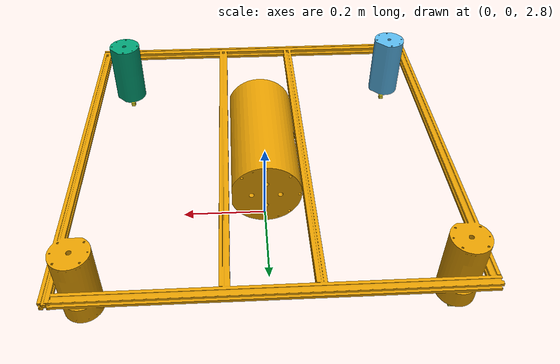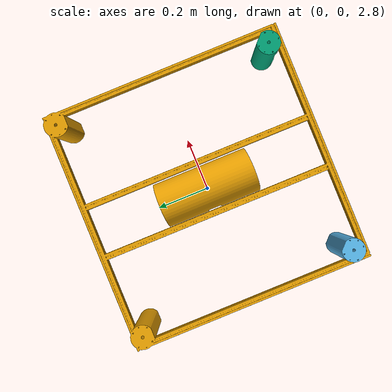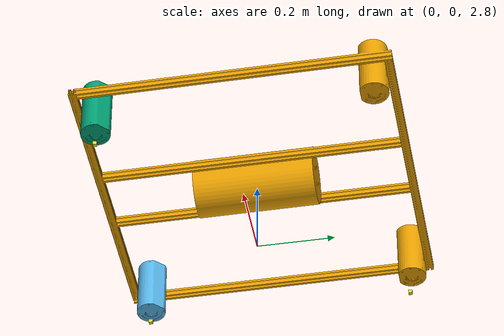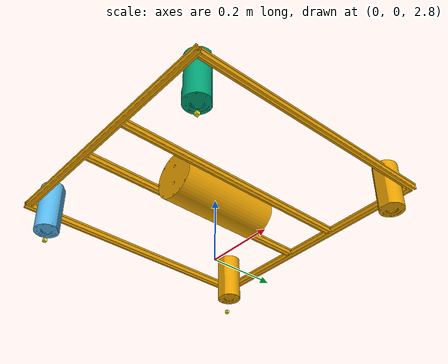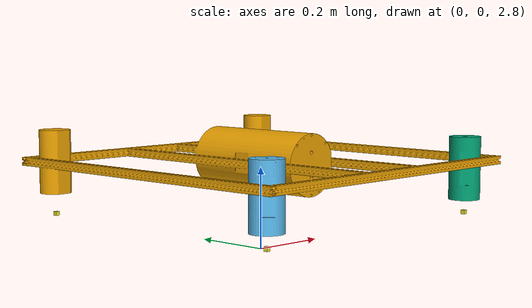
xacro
<?xml version="1.0"?>
<!-- Revolute-Revolute Manipulator -->
<robot name="sss" xmlns:xacro="http://www.ros.org/wiki/xacro">
  <xacro:include filename="$(find rrbot_description)/urdf/sss.gazebo" />
  <xacro:property name="mass" value="1" /> <!-- arbitrary value for mass -->
  <xacro:property name="camera_link" value="0.01" /> <!-- Size of square 'camera' box -->

  <!-- Used for fixing robot to Gazebo 'base_link' -->

  <link name = "base_link">
      <pose frame=''>0 0 2 0 -0 0</pose>

     <visual name="visual">
    <origin xyz="0 0 3" rpy="0 0 0"/>
      <geometry>
	<mesh filename="$(find sss_simulation)/meshes/sss_FINAL2_orgin.dae"/>
      </geometry>
    </visual>
    <collision name="collision">
    <origin xyz="0 0 3" rpy="0 0 0"/>
      <geometry>
	<mesh filename="$(find sss_simulation)/meshes/sss_FINAL2_orgin.dae"/>
      </geometry>
    </collision>
    <inertial>
      <mass value="1e-5" />
      <inertia ixx="1e-6" ixy="0" ixz="0" iyy="1e-6" iyz="0" izz="1e-6" />
    </inertial>

  </link>

  <joint name="left_camera_joint" type="revolute">
    <parent link="base_link"/>
    <child link="left_camera_link"/>
    <origin xyz="-0.35 -0.35 3" rpy="0 0 0"/>
    <axis xyz="0 1 0"/>
    <limit effort="300" velocity="0.1" lower="${-pi/2}" upper="${pi/2}"/>
    <!--dynamics damping="50" friction="1"/-->
  </joint>

  <link name = "left_camera_link">
    <visual name="visual">
      <origin xyz="0 0 0" rpy="0 0 0"/>
      <geometry>
        <mesh filename="$(find sss_simulation)/meshes/camera_cylinder.dae"/>
      </geometry>
    </visual>

  </link>
    <joint name="right_camera_joint" type="revolute">
    <parent link="base_link"/>
    <child link="right_camera_link"/>
    <origin xyz="0.35 -0.35 3" rpy="0 0 0"/>
    <axis xyz="0 1 0"/>
    <limit effort="300" velocity="0.1" lower="-3.14" upper="3.14"/>
    <!--dynamics damping="50" friction="1"/-->
  </joint>

  <link name = "right_camera_link">
    <visual name="visual">
      <origin xyz="0 0 0" rpy="0 0 0"/>
      <geometry>
        <mesh filename="$(find sss_simulation)/meshes/camera_cylinder.dae"/>
      </geometry>
    </visual>
  </link>

  <joint name="camera_joint" type="fixed">
    <axis xyz="0 0 -1" />
    <origin xyz="0 0 -0.11" rpy="${pi} 0 ${2*pi/2}"/>
    <parent link="left_camera_link"/>
    <child link="cameraplugin1_link"/>
  </joint>

  <!-- Camera -->
  <link name="cameraplugin1_link">
    <collision>
	    <origin xyz="0 0 0" rpy="0 0 0"/>
      <geometry>
	<box size="${camera_link} ${camera_link} ${camera_link}"/>
      </geometry>
    </collision>

    <visual>
      <origin xyz="0 0 0" rpy="0 0 0"/>
      <geometry>
	<box size="${camera_link} ${camera_link} ${camera_link}"/>
      </geometry>
      <material name="yellow"/> <!--https://github.com/ros-controls/ros_control/wiki/hardware_interface-->
    </visual>

    <inertial>
      <mass value="1e-5" />
      <origin xyz="0 0 0" rpy="0 0 0"/>
      <inertia ixx="1e-6" ixy="0" ixz="0" iyy="1e-6" iyz="0" izz="1e-6" />
    </inertial>
  </link>

  <joint name="camera_joint2" type="fixed">
    <axis xyz="0 0 -1" />
    <origin xyz="0 0 -0.11" rpy="${pi} ${pi/2} ${3*pi/2}"/>
    <parent link="right_camera_link"/>
    <child link="cameraplugin2_link"/>
  </joint>

  <!-- Camera -->
  <link name="cameraplugin2_link">
    <collision>
      <origin xyz="0 0 0" rpy="0 0 0"/>
      <geometry>
	<box size="${camera_link} ${camera_link} ${camera_link}"/>
      </geometry>
    </collision>

    <visual>
      <origin xyz="0 0 0" rpy="0 0 0"/>
      <geometry>
	<box size="${camera_link} ${camera_link} ${camera_link}"/>
      </geometry>
      <material name="yellow"/>
    </visual>

    <inertial>
      <mass value="1e-5" />
      <origin xyz="0 0 0" rpy="0 0 0"/>
      <inertia ixx="1e-6" ixy="0" ixz="0" iyy="1e-6" iyz="0" izz="1e-6" />
    </inertial>
  </link>

<!--stereo-->

  <joint name="camera_joint_stereo" type="fixed">
    <axis xyz="0 0 -1" />
    <origin xyz="-0.35 0.35 2.89" rpy="${pi} ${pi/2} ${3*pi/2}"/>
    <parent link="base_link"/>
    <child link="cameraplugin3_link"/>
  </joint>

  <!-- Camera -->
  <link name="cameraplugin3_link">

    <visual>
      <origin xyz="0 0 0" rpy="0 0 0"/>
      <geometry>
	<box size="${camera_link} ${camera_link} ${camera_link}"/>
      </geometry>
      <material name="yellow"/><!--https://github.com/ros-controls/ros_control/wiki/hardware_interface-->
    </visual>

  </link>

<!--motion-->

  <transmission name="tran1">
    <type>transmission_interface/SimpleTransmission</type>
    <joint name="left_camera_joint">
      <hardwareInterface>hardware_interface/EffortJointInterface</hardwareInterface>
    </joint>
    <actuator name="motor1">
      <hardwareInterface>hardware_interface/EffortJointInterface</hardwareInterface>
      <mechanicalReduction>1</mechanicalReduction>
    </actuator>
  </transmission>

  <transmission name="tran2">
    <type>transmission_interface/SimpleTransmission</type>
    <joint name="right_camera_joint">
      <hardwareInterface>hardware_interface/EffortJointInterface</hardwareInterface>
    </joint>
    <actuator name="motor2">
      <hardwareInterface>hardware_interface/EffortJointInterface</hardwareInterface>
      <mechanicalReduction>1</mechanicalReduction>
    </actuator>
  </transmission>

</robot>
